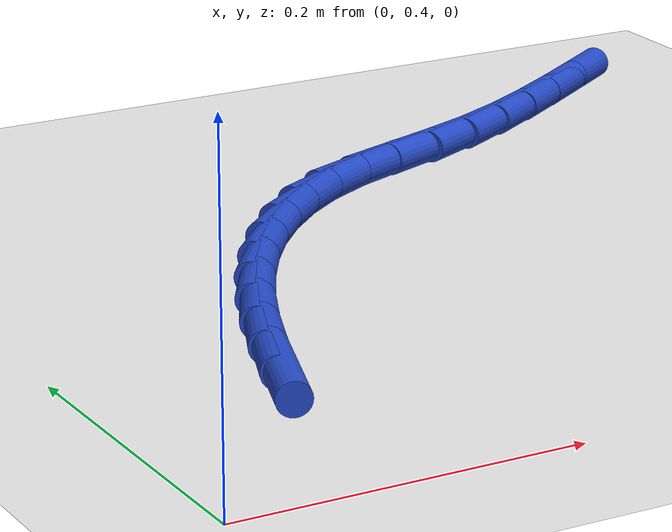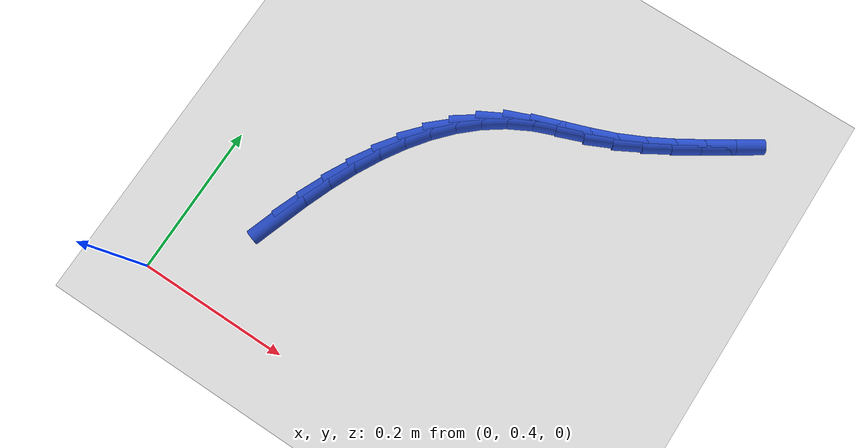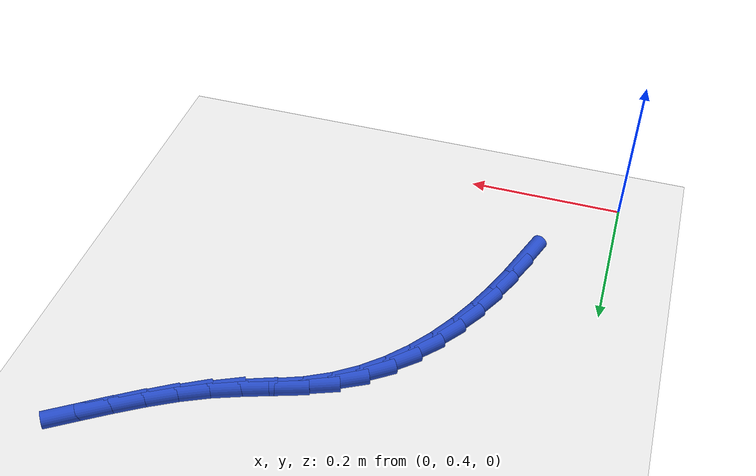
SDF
<sdf version="1.6">
 <world name="default">
  <model name="ground_plane">
   <static>1</static>
   <link name="link">
    <collision name="collision">
     <geometry><plane><normal>0 0 1</normal><size>100 100</size></plane></geometry>
     <surface><friction><ode><mu>100</mu><mu2>50</mu2></ode></friction></surface>
    </collision>
    <visual name="visual">
     <cast_shadows>0</cast_shadows>
     <geometry><plane><normal>0 0 1</normal><size>100 100</size></plane></geometry>
     <material>
      <script><uri>file://media/materials/scripts/gazebo.material</uri><name>Gazebo/WhiteGlow</name></script>
     </material>
    </visual>
   </link>
  </model>
  <model name="line">
   <link name="link_15">
    <pose>0.10329414954934178 0.5372737262378114 0.01 0 1.57 1.2417213000411023</pose>
    <collision name="collision">
     <geometry><cylinder><radius>0.01</radius><length>0.08</length></cylinder></geometry>
    </collision>
    <visual name="visual">
     <material>
      <script><name>Gazebo/Blue</name><uri>file://media/materials/scripts/gazebo.material</uri></script>
     </material>
     <geometry><cylinder><radius>0.01</radius><length>0.08</length></cylinder></geometry>
    </visual>
   </link>
   <link name="link_16">
    <pose>0.11554127189379927 0.5731373279864014 0.01 0 1.57 1.198908847969215</pose>
    <collision name="collision">
     <geometry><cylinder><radius>0.01</radius><length>0.08</length></cylinder></geometry>
    </collision>
    <visual name="visual">
     <material>
      <script><name>Gazebo/Blue</name><uri>file://media/materials/scripts/gazebo.material</uri></script>
     </material>
     <geometry><cylinder><radius>0.01</radius><length>0.08</length></cylinder></geometry>
    </visual>
   </link>
   <link name="link_17">
    <pose>0.12907839589139705 0.6078446823762234 0.01 0 1.57 1.1478045858629449</pose>
    <collision name="collision">
     <geometry><cylinder><radius>0.01</radius><length>0.08</length></cylinder></geometry>
    </collision>
    <visual name="visual">
     <material>
      <script><name>Gazebo/Blue</name><uri>file://media/materials/scripts/gazebo.material</uri></script>
     </material>
     <geometry><cylinder><radius>0.01</radius><length>0.08</length></cylinder></geometry>
    </visual>
   </link>
   <link name="link_18">
    <pose>0.14406134506260146 0.6411278669613735 0.01 0 1.57 1.0873673313387284</pose>
    <collision name="collision">
     <geometry><cylinder><radius>0.01</radius><length>0.08</length></cylinder></geometry>
    </collision>
    <visual name="visual">
     <material>
      <script><name>Gazebo/Blue</name><uri>file://media/materials/scripts/gazebo.material</uri></script>
     </material>
     <geometry><cylinder><radius>0.01</radius><length>0.08</length></cylinder></geometry>
    </visual>
   </link>
   <link name="link_19">
    <pose>0.16064594292787912 0.6727189592959486 0.01 0 1.57 1.0165126921363037</pose>
    <collision name="collision">
     <geometry><cylinder><radius>0.01</radius><length>0.08</length></cylinder></geometry>
    </collision>
    <visual name="visual">
     <material>
      <script><name>Gazebo/Blue</name><uri>file://media/materials/scripts/gazebo.material</uri></script>
     </material>
     <geometry><cylinder><radius>0.01</radius><length>0.08</length></cylinder></geometry>
    </visual>
   </link>
   <link name="link_20">
    <pose>0.17898801300769623 0.7023500369340444 0.01 0 1.57 0.9342675640775021</pose>
    <collision name="collision">
     <geometry><cylinder><radius>0.01</radius><length>0.08</length></cylinder></geometry>
    </collision>
    <visual name="visual">
     <material>
      <script><name>Gazebo/Blue</name><uri>file://media/materials/scripts/gazebo.material</uri></script>
     </material>
     <geometry><cylinder><radius>0.01</radius><length>0.08</length></cylinder></geometry>
    </visual>
   </link>
   <link name="link_21">
    <pose>0.19924337882251947 0.7297531774297582 0.01 0 1.57 0.8400272031053553</pose>
    <collision name="collision">
     <geometry><cylinder><radius>0.01</radius><length>0.08</length></cylinder></geometry>
    </collision>
    <visual name="visual">
     <material>
      <script><name>Gazebo/Blue</name><uri>file://media/materials/scripts/gazebo.material</uri></script>
     </material>
     <geometry><cylinder><radius>0.01</radius><length>0.08</length></cylinder></geometry>
    </visual>
   </link>
   <link name="link_22">
    <pose>0.2215678638928153 0.7546604583371863 0.01 0 1.57 0.7339170658168073</pose>
    <collision name="collision">
     <geometry><cylinder><radius>0.01</radius><length>0.08</length></cylinder></geometry>
    </collision>
    <visual name="visual">
     <material>
      <script><name>Gazebo/Blue</name><uri>file://media/materials/scripts/gazebo.material</uri></script>
     </material>
     <geometry><cylinder><radius>0.01</radius><length>0.08</length></cylinder></geometry>
    </visual>
   </link>
   <link name="link_23">
    <pose>0.24611729173904995 0.7768039572104251 0.01 0 1.57 0.6171924710068714</pose>
    <collision name="collision">
     <geometry><cylinder><radius>0.01</radius><length>0.08</length></cylinder></geometry>
    </collision>
    <visual name="visual">
     <material>
      <script><name>Gazebo/Blue</name><uri>file://media/materials/scripts/gazebo.material</uri></script>
     </material>
     <geometry><cylinder><radius>0.01</radius><length>0.08</length></cylinder></geometry>
    </visual>
   </link>
   <link name="link_24">
    <pose>0.27304748588169014 0.7959157516035712 0.01 0 1.57 0.49250480300781896</pose>
    <collision name="collision">
     <geometry><cylinder><radius>0.01</radius><length>0.08</length></cylinder></geometry>
    </collision>
    <visual name="visual">
     <material>
      <script><name>Gazebo/Blue</name><uri>file://media/materials/scripts/gazebo.material</uri></script>
     </material>
     <geometry><cylinder><radius>0.01</radius><length>0.08</length></cylinder></geometry>
    </visual>
   </link>
   <link name="link_25">
    <pose>0.3025142698118226 0.8117279191244807 0.01 0 1.57 0.378622844388829</pose>
    <collision name="collision">
     <geometry><cylinder><radius>0.01</radius><length>0.08</length></cylinder></geometry>
    </collision>
    <visual name="visual">
     <material>
      <script><name>Gazebo/Blue</name><uri>file://media/materials/scripts/gazebo.material</uri></script>
     </material>
     <geometry><cylinder><radius>0.01</radius><length>0.08</length></cylinder></geometry>
    </visual>
   </link>
   <link name="link_26">
    <pose>0.33442708786153785 0.8244233725041238 0.01 0 1.57 0.3335779894757052</pose>
    <collision name="collision">
     <geometry><cylinder><radius>0.01</radius><length>0.08</length></cylinder></geometry>
    </collision>
    <visual name="visual">
     <material>
      <script><name>Gazebo/Blue</name><uri>file://media/materials/scripts/gazebo.material</uri></script>
     </material>
     <geometry><cylinder><radius>0.01</radius><length>0.08</length></cylinder></geometry>
    </visual>
   </link>
   <link name="link_27">
    <pose>0.367724383606439 0.835961803188754 0.01 0 1.57 0.36540223435683405</pose>
    <collision name="collision">
     <geometry><cylinder><radius>0.01</radius><length>0.08</length></cylinder></geometry>
    </collision>
    <visual name="visual">
     <material>
      <script><name>Gazebo/Blue</name><uri>file://media/materials/scripts/gazebo.material</uri></script>
     </material>
     <geometry><cylinder><radius>0.01</radius><length>0.08</length></cylinder></geometry>
    </visual>
   </link>
   <link name="link_28">
    <pose>0.4011085047656998 0.8487340036481735 0.01 0 1.57 0.44257388324444397</pose>
    <collision name="collision">
     <geometry><cylinder><radius>0.01</radius><length>0.08</length></cylinder></geometry>
    </collision>
    <visual name="visual">
     <material>
      <script><name>Gazebo/Blue</name><uri>file://media/materials/scripts/gazebo.material</uri></script>
     </material>
     <geometry><cylinder><radius>0.01</radius><length>0.08</length></cylinder></geometry>
    </visual>
   </link>
   <link name="link_29">
    <pose>0.43372339793982173 0.864191137343748 0.01 0 1.57 0.5063381082381144</pose>
    <collision name="collision">
     <geometry><cylinder><radius>0.01</radius><length>0.08</length></cylinder></geometry>
    </collision>
    <visual name="visual">
     <material>
      <script><name>Gazebo/Blue</name><uri>file://media/materials/scripts/gazebo.material</uri></script>
     </material>
     <geometry><cylinder><radius>0.01</radius><length>0.08</length></cylinder></geometry>
    </visual>
   </link>
   <link name="link_30">
    <pose>0.46561058249074977 0.8818745227632787 0.01 0 1.57 0.5505316895759244</pose>
    <collision name="collision">
     <geometry><cylinder><radius>0.01</radius><length>0.08</length></cylinder></geometry>
    </collision>
    <visual name="visual">
     <material>
      <script><name>Gazebo/Blue</name><uri>file://media/materials/scripts/gazebo.material</uri></script>
     </material>
     <geometry><cylinder><radius>0.01</radius><length>0.08</length></cylinder></geometry>
    </visual>
   </link>
   <link name="link_31">
    <pose>0.4969205022887321 0.9010937100816038 0.01 0 1.57 0.5761595144523458</pose>
    <collision name="collision">
     <geometry><cylinder><radius>0.01</radius><length>0.08</length></cylinder></geometry>
    </collision>
    <visual name="visual">
     <material>
      <script><name>Gazebo/Blue</name><uri>file://media/materials/scripts/gazebo.material</uri></script>
     </material>
     <geometry><cylinder><radius>0.01</radius><length>0.08</length></cylinder></geometry>
    </visual>
   </link>
   <link name="link_32">
    <pose>0.5278036012040173 0.921158249473562 0.01 0 1.57 0.5838054190910184</pose>
    <collision name="collision">
     <geometry><cylinder><radius>0.01</radius><length>0.08</length></cylinder></geometry>
    </collision>
    <visual name="visual">
     <material>
      <script><name>Gazebo/Blue</name><uri>file://media/materials/scripts/gazebo.material</uri></script>
     </material>
     <geometry><cylinder><radius>0.01</radius><length>0.08</length></cylinder></geometry>
    </visual>
   </link>
  </model>
 </world>
</sdf>
